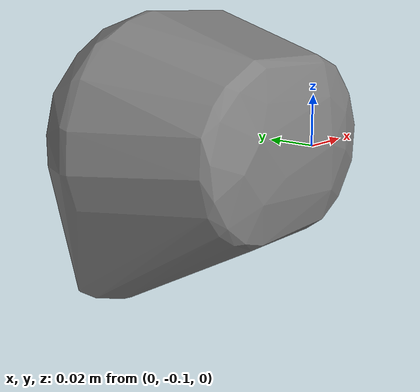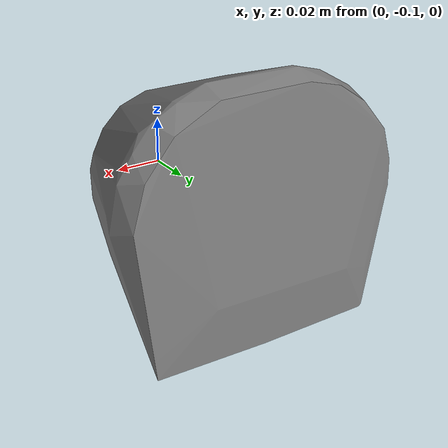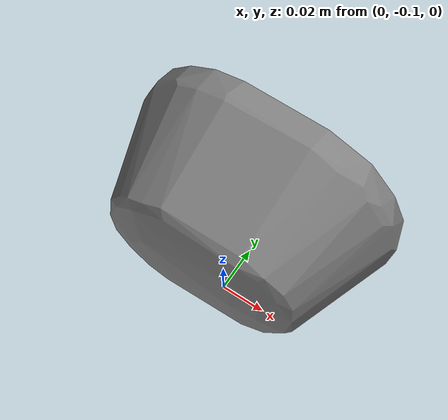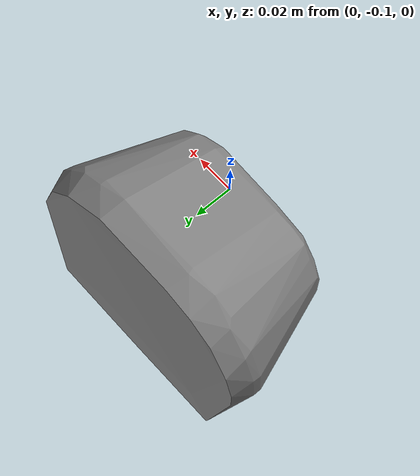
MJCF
<mujoco model="arm_link_sh0_right_motor">
  <default>
    <default class="visual">
      <geom group="2" type="mesh" contype="0" conaffinity="0"/>
    </default>
    <default class="collision">
      <geom group="3" type="mesh"/>
    </default>
  </default>
  <asset>
    <mesh file="arm_link_sh0_right_motor.obj"/>
    <mesh file="arm_link_sh0_right_motor_collision_0.obj"/>
  </asset>
  <worldbody>
    <body name="arm_link_sh0_right_motor">
      <geom mesh="arm_link_sh0_right_motor" class="visual"/>
      <geom mesh="arm_link_sh0_right_motor_collision_0" rgba="0.5432067398803456 0.19151060591849944 0.8393874136896738 1" class="collision"/>
    </body>
  </worldbody>
</mujoco>
